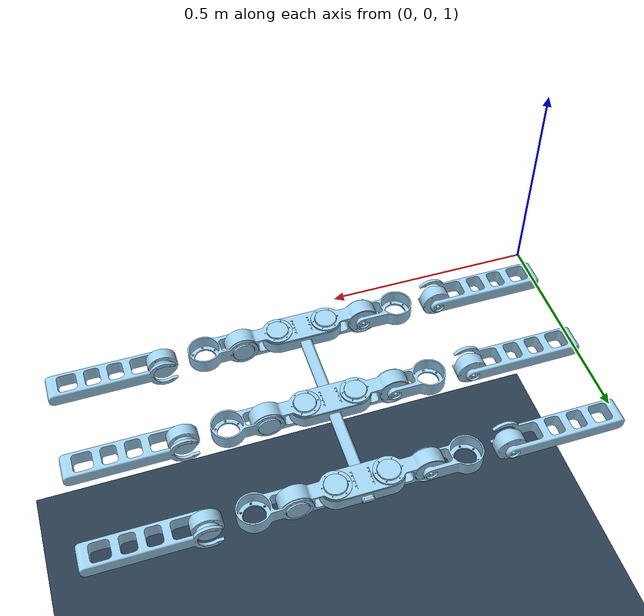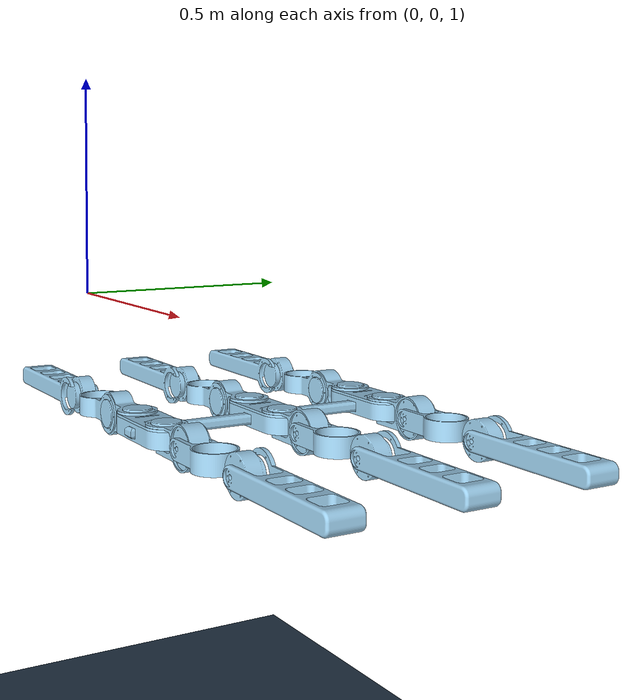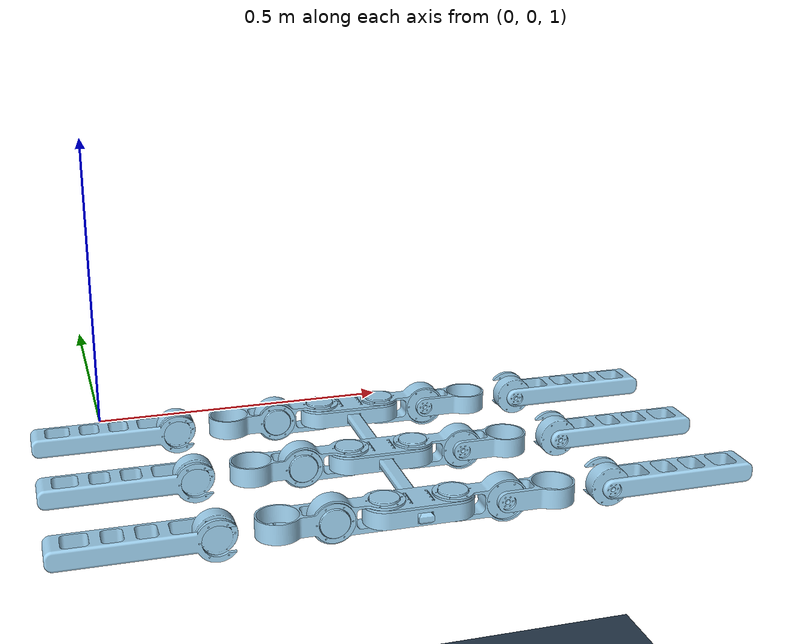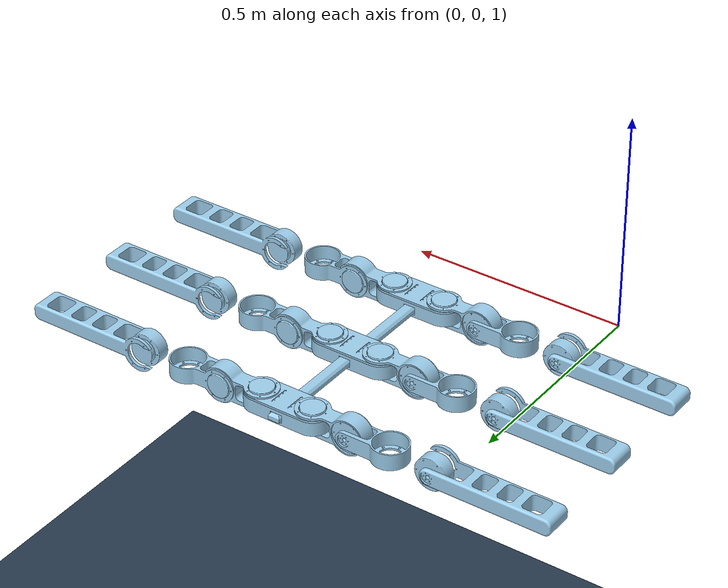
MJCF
<mujoco>
    <compiler meshdir="assets" texturedir="assets" />
    <statistic extent="1.5" meansize=".05" />

    <option timestep="0.005" jacobian="sparse" />

    <visual>
        <rgba haze="0.15 0.25 0.35 1" />
        <quality shadowsize="4096" />
        <map stiffness="700" shadowscale="0.5" fogstart="10" fogend="15" zfar="40" haze="0.3" />
    </visual>

    <asset>
        <texture type="skybox" builtin="gradient" rgb1="0.3 0.5 0.7" rgb2="0 0 0" width="512"
            height="512" />
        <texture name="texplane" type="2d" builtin="checker" rgb1=".2 .3 .4" rgb2=".1 0.15 0.2"
            width="512" height="512" mark="cross" markrgb=".8 .8 .8" />
        <material name="matplane" reflectance="0.3" texture="texplane" texrepeat="1 1"
            texuniform="true" />
    </asset>

    <asset>
        <mesh name="ak60-6_motor_frame_1" file="ak60-6_motor_frame_1.stl" />
        <mesh name="ak60-6_motor_frame_2" file="ak60-6_motor_frame_2.stl" />
        <mesh name="ak_80-6" file="ak_80-6.stl" />
        <mesh name="body_part" file="body_part.stl" />
        <mesh name="leg_link_1" file="leg_link_1.stl" />
        <mesh name="leg_link_2" file="leg_link_2.stl" />
        <mesh name="leg_link_3" file="leg_link_3.stl" />
    </asset>

    <worldbody>

        <body name="stick_insect_robot" pos="0 0 1.0">
            <freejoint name="space" />
            <geom pos="0.495543 0.160534 -0.219748" quat="0.707107 9.03779e-09 3.70752e-10 0.707107"
                type="mesh" rgba="0.615686 0.811765 0.929412 1" mesh="ak60-6_motor_frame_1" contype="1" conaffinity="1"/>
            <geom pos="0.629543 0.160534 -0.185748"
                quat="0.707107 -3.70752e-10 9.03779e-09 -0.707107"
                type="mesh" rgba="0.615686 0.811765 0.929412 1" mesh="ak60-6_motor_frame_2" contype="1" conaffinity="1"/>
            <geom pos="0.495543 -0.0894658 -0.219748"
                quat="0.707107 9.03779e-09 3.70752e-10 0.707107"
                type="mesh" rgba="0.615686 0.811765 0.929412 1" mesh="ak60-6_motor_frame_1" contype="1" conaffinity="1"/>
            <geom pos="0.495543 0.410534 -0.219748" quat="0.707107 9.03779e-09 3.70752e-10 0.707107"
                type="mesh" rgba="0.615686 0.811765 0.929412 1" mesh="ak60-6_motor_frame_1" contype="1" conaffinity="1"/>
            <geom pos="0.629543 0.410534 -0.215748" quat="1 6.12852e-09 6.65284e-09 0" type="mesh"
                rgba="0.615686 0.811765 0.929412 1" mesh="ak_80-6" contype="1" conaffinity="1"/>
            <geom pos="0.495543 0.160534 -0.214748" quat="1 6.12852e-09 6.65284e-09 0" type="mesh"
                rgba="0.615686 0.811765 0.929412 1" mesh="ak_80-6" contype="1" conaffinity="1"/>
            <geom pos="0.495543 -0.0894658 -0.214748" quat="1 6.12852e-09 6.65284e-09 0" type="mesh"
                rgba="0.615686 0.811765 0.929412 1" mesh="ak_80-6" contype="1" conaffinity="1"/>
            <geom pos="0.629543 -0.0894658 -0.215748" quat="1 6.12852e-09 6.65284e-09 0" type="mesh"
                rgba="0.615686 0.811765 0.929412 1" mesh="ak_80-6" contype="1" conaffinity="1"/>
            <geom pos="0.629543 0.160534 -0.215748" quat="1 6.12852e-09 6.65284e-09 0" type="mesh"
                rgba="0.615686 0.811765 0.929412 1" mesh="ak_80-6" contype="1" conaffinity="1"/>
            <geom pos="0.629543 -0.0894658 -0.185748"
                quat="0.707107 -3.70752e-10 9.03779e-09 -0.707107"
                type="mesh" rgba="0.615686 0.811765 0.929412 1" mesh="ak60-6_motor_frame_2" contype="1" conaffinity="1"/>
            <geom pos="0.495543 0.410534 -0.214748" quat="1 6.12852e-09 6.65284e-09 0" type="mesh"
                rgba="0.615686 0.811765 0.929412 1" mesh="ak_80-6" contype="1" conaffinity="1"/>
            <geom pos="0.629543 0.410534 -0.185748"
                quat="0.707107 -3.70752e-10 9.03779e-09 -0.707107"
                type="mesh" rgba="0.615686 0.811765 0.929412 1" mesh="ak60-6_motor_frame_2" contype="1" conaffinity="1"/>
            <geom pos="0.562543 0.460534 -0.203748"
                quat="0.707107 0.707107 4.70427e-09 -4.70427e-09"
                type="mesh" rgba="0.615686 0.811765 0.929412 1" mesh="body_part" contype="1" conaffinity="1"/>
            <body name="marine_link_1" pos="0.629543 -0.0894658 -0.215748"
                quat="0.707107 -3.70752e-10 9.03779e-09 -0.707107">
                <inertial pos="-0.00307987 0.0973785 0.0137137"
                    quat="0.674254 0.738442 0.00600332 0.00702786" mass="1.52194"
                    diaginertia="0.00145125 0.00108735 0.000782168" />
                <joint name="leg1_1" pos="0 0 0" axis="0 0 1" actuatorfrcrange="-1 1" />
                <geom pos="0.016 0.1 0.014" quat="0 -0.707107 0 0.707107" type="mesh"
                    rgba="0.615686 0.811765 0.929412 1" mesh="ak_80-6" contype="0" conaffinity="0"/>
                <geom pos="0 0 -0.006" quat="0 1 0 0" type="mesh"
                    rgba="0.615686 0.811765 0.929412 1"
                    mesh="leg_link_1" contype="0" conaffinity="0"/>
                <body name="marine_link_2" pos="0.016 0.1 0.014" quat="0.707107 0 -0.707107 0">
                    <inertial pos="-8.33674e-09 0.195522 0.0139407"
                        quat="0.503796 0.496175 -0.496175 0.503796" mass="1.76873"
                        diaginertia="0.00537117 0.00508675 0.000940409" />
                    <joint name="leg1_2" pos="0 0 0" axis="0 0 1" actuatorfrcrange="-1 1" />
                    <geom pos="0 0 -0.005" quat="0 1 0 0" type="mesh"
                        rgba="0.615686 0.811765 0.929412 1" mesh="leg_link_2" contype="0" conaffinity="0"/>
                    <geom pos="0 0.214 -0.006" quat="0 0 0 -1" type="mesh"
                        rgba="0.615686 0.811765 0.929412 1" mesh="ak_80-6" contype="0" conaffinity="0"/>
                    <body name="leg_link_3" pos="0 0.214 -0.006">
                        <inertial pos="-3.22304e-08 0.165468 0.0188479"
                            quat="0.704426 0.709778 -8.40284e-07 8.33948e-07" mass="0.427669"
                            diaginertia="0.00339961 0.00320716 0.000321355" />
                        <joint name="leg1_3" pos="0 0 0" axis="0 0 1" actuatorfrcrange="-1 1" />
                        <geom pos="0 0 -0.005" quat="0 1 0 0" type="mesh"
                            rgba="0.615686 0.811765 0.929412 1" mesh="leg_link_3" contype="1" conaffinity="1"/>
                    </body>
                </body>
            </body>
            <body name="marine_link_1_2" pos="0.495543 -0.0894658 -0.214748"
                quat="0.707107 9.03779e-09 3.70752e-10 0.707107">
                <inertial pos="-0.00307987 0.0973785 0.0137137"
                    quat="0.674254 0.738442 0.00600332 0.00702786" mass="1.52194"
                    diaginertia="0.00145125 0.00108735 0.000782168" />
                <joint name="leg2_1" pos="0 0 0" axis="0 0 1" actuatorfrcrange="-1 1" />
                <geom pos="0.016 0.1 0.014" quat="0 -0.707107 0 0.707107" type="mesh"
                    rgba="0.615686 0.811765 0.929412 1" mesh="ak_80-6" contype="0" conaffinity="0"/>
                <geom pos="0 0 -0.006" quat="0 1 0 0" type="mesh"
                    rgba="0.615686 0.811765 0.929412 1"
                    mesh="leg_link_1" contype="0" conaffinity="0"/>
                <body name="marine_link_2_2" pos="0.016 0.1 0.014" quat="0.707107 0 -0.707107 0">
                    <inertial pos="-8.33674e-09 0.195522 0.0139407"
                        quat="0.503796 0.496175 -0.496175 0.503796" mass="1.76873"
                        diaginertia="0.00537117 0.00508675 0.000940409" />
                    <joint name="leg2_2" pos="0 0 0" axis="0 0 1" actuatorfrcrange="-1 1" />
                    <geom pos="0 0 -0.005" quat="0 -1 0 0" type="mesh"
                        rgba="0.615686 0.811765 0.929412 1" mesh="leg_link_2" contype="0" conaffinity="0"/>
                    <geom pos="0 0.214 -0.006" quat="0 0 0 1" type="mesh"
                        rgba="0.615686 0.811765 0.929412 1" mesh="ak_80-6" contype="0" conaffinity="0"/>
                    <body name="leg_link_3_2" pos="0 0.214 -0.006" quat="1 0 0 0">
                        <inertial pos="-3.22304e-08 0.165468 0.0188479"
                            quat="0.704426 0.709778 -8.40284e-07 8.33948e-07" mass="0.427669"
                            diaginertia="0.00339961 0.00320716 0.000321355" />
                        <joint name="leg2_3" pos="0 0 0" axis="0 0 1" actuatorfrcrange="-1 1" />
                        <geom pos="0 0 -0.005" quat="0 -1 0 0" type="mesh"
                            rgba="0.615686 0.811765 0.929412 1" mesh="leg_link_3" contype="1" conaffinity="1"/>
                    </body>
                </body>
            </body>
            <body name="marine_link_1_3" pos="0.629543 0.160534 -0.215748"
                quat="0.707107 -3.70752e-10 9.03779e-09 -0.707107">
                <inertial pos="-0.00307987 0.0973785 0.0137137"
                    quat="0.674254 0.738442 0.00600332 0.00702786" mass="1.52194"
                    diaginertia="0.00145125 0.00108735 0.000782168" />
                <joint name="leg3_1" pos="0 0 0" axis="0 0 1" actuatorfrcrange="-1 1" />
                <geom pos="0.016 0.1 0.014" quat="0 -0.707107 0 0.707107" type="mesh"
                    rgba="0.615686 0.811765 0.929412 1" mesh="ak_80-6" contype="0" conaffinity="0"/>
                <geom pos="0 0 -0.006" quat="0 -1 0 0" type="mesh"
                    rgba="0.615686 0.811765 0.929412 1"
                    mesh="leg_link_1" contype="0" conaffinity="0"/>
                <body name="marine_link_2_3" pos="0.016 0.1 0.014" quat="0.707107 0 -0.707107 0">
                    <inertial pos="-8.33674e-09 0.195522 0.0139407"
                        quat="0.503796 0.496175 -0.496175 0.503796" mass="1.76873"
                        diaginertia="0.00537117 0.00508675 0.000940409" />
                    <joint name="leg3_2" pos="0 0 0" axis="0 0 1" actuatorfrcrange="-1 1" />
                    <geom pos="0 0 -0.005" quat="0 -1 0 0" type="mesh"
                        rgba="0.615686 0.811765 0.929412 1" mesh="leg_link_2" contype="0" conaffinity="0"/>
                    <geom pos="0 0.214 -0.006" quat="0 0 0 1" type="mesh"
                        rgba="0.615686 0.811765 0.929412 1" mesh="ak_80-6" contype="0" conaffinity="0"/>
                    <body name="leg_link_3_3" pos="0 0.214 -0.006">
                        <inertial pos="-3.22304e-08 0.165468 0.0188479"
                            quat="0.704426 0.709778 -8.40284e-07 8.33948e-07" mass="0.427669"
                            diaginertia="0.00339961 0.00320716 0.000321355" />
                        <joint name="leg3_3" pos="0 0 0" axis="0 0 1" actuatorfrcrange="-1 1" />
                        <geom pos="0 0 -0.005" quat="0 -1 0 0" type="mesh"
                            rgba="0.615686 0.811765 0.929412 1" mesh="leg_link_3" contype="1" conaffinity="1"/>
                    </body>
                </body>
            </body>
            <body name="marine_link_1_4" pos="0.495543 0.160534 -0.214748"
                quat="0.707107 9.03779e-09 3.70752e-10 0.707107">
                <inertial pos="-0.00307987 0.0973785 0.0137137"
                    quat="0.674254 0.738442 0.00600332 0.00702786" mass="1.52194"
                    diaginertia="0.00145125 0.00108735 0.000782168" />
                <joint name="leg4_1" pos="0 0 0" axis="0 0 1" actuatorfrcrange="-1 1" />
                <geom pos="0.016 0.1 0.014" quat="0 -0.707107 0 0.707107" type="mesh"
                    rgba="0.615686 0.811765 0.929412 1" mesh="ak_80-6" contype="0" conaffinity="0"/>
                <geom pos="0 0 -0.006" quat="0 1 0 0" type="mesh"
                    rgba="0.615686 0.811765 0.929412 1"
                    mesh="leg_link_1" contype="0" conaffinity="0"/>
                <body name="marine_link_2_4" pos="0.016 0.1 0.014" quat="0.707107 0 -0.707107 0">
                    <inertial pos="-8.33674e-09 0.195522 0.0139407"
                        quat="0.503796 0.496175 -0.496175 0.503796" mass="1.76873"
                        diaginertia="0.00537117 0.00508675 0.000940409" />
                    <joint name="leg4_2" pos="0 0 0" axis="0 0 1" actuatorfrcrange="-1 1" />
                    <geom pos="0 0 -0.005" quat="0 1 0 0" type="mesh"
                        rgba="0.615686 0.811765 0.929412 1" mesh="leg_link_2" contype="0" conaffinity="0"/>
                    <geom pos="0 0.214 -0.006" quat="0 0 0 -1" type="mesh"
                        rgba="0.615686 0.811765 0.929412 1" mesh="ak_80-6" contype="0" conaffinity="0"/>
                    <body name="leg_link_3_4" pos="0 0.214 -0.0059" quat="1 0 0 -9.31688e-09">
                        <inertial pos="-3.22304e-08 0.165468 0.0188479"
                            quat="0.704426 0.709778 -8.40284e-07 8.33948e-07" mass="0.427669"
                            diaginertia="0.00339961 0.00320716 0.000321355" />
                        <joint name="leg4_3" pos="0 0 0" axis="0 0 1" actuatorfrcrange="-1 1" />
                        <geom pos="0 0 -0.005" quat="0 -1 0 0" type="mesh"
                            rgba="0.615686 0.811765 0.929412 1" mesh="leg_link_3" contype="1" conaffinity="1"/>
                    </body>
                </body>
            </body>
            <body name="marine_link_1_5" pos="0.629543 0.410534 -0.215648"
                quat="0.707107 -3.70752e-10 9.03779e-09 -0.707107">
                <inertial pos="-0.00307987 0.0973785 0.0137137"
                    quat="0.674254 0.738442 0.00600332 0.00702786" mass="1.52194"
                    diaginertia="0.00145125 0.00108735 0.000782168" />
                <joint name="leg5_1" pos="0 0 0" axis="0 0 1" actuatorfrcrange="-1 1" />
                <geom pos="0.016 0.1 0.014" quat="0 0.707107 0 -0.707107" type="mesh"
                    rgba="0.615686 0.811765 0.929412 1" mesh="ak_80-6" contype="0" conaffinity="0"/>
                <geom pos="0 0 -0.006" quat="0 1 0 0" type="mesh"
                    rgba="0.615686 0.811765 0.929412 1"
                    mesh="leg_link_1" contype="0" conaffinity="0"/>
                <body name="marine_link_2_5" pos="0.016 0.1 0.014" quat="0.707107 0 -0.707107 0">
                    <inertial pos="-8.33674e-09 0.195522 0.0139407"
                        quat="0.503796 0.496175 -0.496175 0.503796" mass="1.76873"
                        diaginertia="0.00537117 0.00508675 0.000940409" />
                    <joint name="leg5_2" pos="0 0 0" axis="0 0 1" actuatorfrcrange="-1 1" />
                    <geom pos="0 0 -0.005" quat="0 -1 0 0" type="mesh"
                        rgba="0.615686 0.811765 0.929412 1" mesh="leg_link_2" contype="0" conaffinity="0"/>
                    <geom pos="0 0.214 -0.006" quat="0 0 0 1" type="mesh"
                        rgba="0.615686 0.811765 0.929412 1" mesh="ak_80-6" contype="0" conaffinity="0"/>
                    <body name="leg_link_3_5" pos="0 0.214 -0.006">
                        <inertial pos="-3.22304e-08 0.165468 0.0188479"
                            quat="0.704426 0.709778 -8.40284e-07 8.33948e-07" mass="0.427669"
                            diaginertia="0.00339961 0.00320716 0.000321355" />
                        <joint name="leg5_3" pos="0 0 0" axis="0 0 1" actuatorfrcrange="-1 1" />
                        <geom pos="0 0 -0.005" quat="0 1 0 0" type="mesh"
                            rgba="0.615686 0.811765 0.929412 1" mesh="leg_link_3" contype="1" conaffinity="1"/>
                    </body>
                </body>
            </body>
            <body name="marine_link_1_6" pos="0.495543 0.410534 -0.214748"
                quat="0.707107 9.03779e-09 3.70752e-10 0.707107">
                <inertial pos="-0.00307987 0.0973785 0.0137137"
                    quat="0.674254 0.738442 0.00600332 0.00702786" mass="1.52194"
                    diaginertia="0.00145125 0.00108735 0.000782168" />
                <joint name="leg6_1" pos="0 0 0" axis="0 0 1" actuatorfrcrange="-1 1" />
                <geom pos="0.016 0.1 0.014" quat="0 0.707107 0 -0.707107" type="mesh"
                    rgba="0.615686 0.811765 0.929412 1" mesh="ak_80-6" contype="0" conaffinity="0"/>
                <geom pos="0 0 -0.006" quat="0 1 0 0" type="mesh"
                    rgba="0.615686 0.811765 0.929412 1"
                    mesh="leg_link_1" contype="0" conaffinity="0"/>
                <body name="marine_link_2_6" pos="0.016 0.1 0.014" quat="0.707107 0 -0.707107 0">
                    <inertial pos="-8.33674e-09 0.195522 0.0139407"
                        quat="0.503796 0.496175 -0.496175 0.503796" mass="1.76873"
                        diaginertia="0.00537117 0.00508675 0.000940409" />
                    <joint name="leg6_2" pos="0 0 0" axis="0 0 1" actuatorfrcrange="-1 1" />
                    <geom pos="0 0 -0.005" quat="0 1 0 0" type="mesh"
                        rgba="0.615686 0.811765 0.929412 1" mesh="leg_link_2" contype="0" conaffinity="0"/>
                    <geom pos="0 0.214 -0.006" quat="0 0 0 -1" type="mesh"
                        rgba="0.615686 0.811765 0.929412 1" mesh="ak_80-6" contype="0" conaffinity="0"/>
                    <body name="leg_link_3_6" pos="0 0.214 -0.0059" quat="1 0 0 0">
                        <inertial pos="-3.22304e-08 0.165468 0.0188479"
                            quat="0.704426 0.709778 -8.40284e-07 8.33948e-07" mass="0.427669"
                            diaginertia="0.00339961 0.00320716 0.000321355" />
                        <joint name="leg6_3" pos="0 0 0" axis="0 0 1" actuatorfrcrange="-1 1" />
                        <geom pos="0 0 -0.005" quat="0 1 0 0" type="mesh"
                            rgba="0.615686 0.811765 0.929412 1" mesh="leg_link_3" contype="1" conaffinity="1"/>
                    </body>
                </body>
            </body>
        </body>

        <light directional="true" diffuse=".4 .4 .4" specular="0.1 0.1 0.1" pos="0 0 5.0"
            dir="0 0 -1" castshadow="false" />
        <light directional="true" diffuse=".6 .6 .6" specular="0.2 0.2 0.2" pos="0 0 4" dir="0 0 -1" />

        <geom name="ground" type="plane" size="0 0 1" pos="0 0 0" quat="1 0 0 0" material="matplane"
            condim="1" friction="0.9 0.1 0.01" />
        <body mocap="true" pos="-.1 .05 0" zaxis=".5 0 1">
        </body>
    </worldbody>

    <actuator>
        <motor name="space" joint="space" />

        <position name="TR0" joint="leg2_1" kp="5" kv="0.1" />
        <position name="CR0" joint="leg2_2" kp="5000" kv="500" />
        <position name="FR0" joint="leg2_3" kp="5" kv="0.1" />
        <position name="TL0" joint="leg1_1" kp="5" kv="0.1" />
        <position name="CL0" joint="leg1_2" kp="5" kv="0.1" />
        <position name="FL0" joint="leg1_3" kp="5" kv="0.1" />
        <position name="TR1" joint="leg4_1" kp="5" kv="0.1" />
        <position name="CR1" joint="leg4_2" kp="5000" kv="500" />
        <position name="FR1" joint="leg4_3" kp="5" kv="0.1" />
        <position name="TL1" joint="leg3_1" kp="5" kv="0.1" />
        <position name="CL1" joint="leg3_2" kp="5" kv="0.1" />
        <position name="FL1" joint="leg3_3" kp="5" kv="0.1" />
        <position name="TR2" joint="leg6_1" kp="5" kv="0.1" />
        <position name="CR2" joint="leg6_2" kp="5000" kv="500" />
        <position name="FR2" joint="leg6_3" kp="5" kv="0.1" />
        <position name="TL2" joint="leg5_1" kp="5" kv="0.1" />
        <position name="CL2" joint="leg5_2" kp="5" kv="0.1" />
        <position name="FL2" joint="leg5_3" kp="5" kv="0.1" />
    </actuator>

</mujoco>
